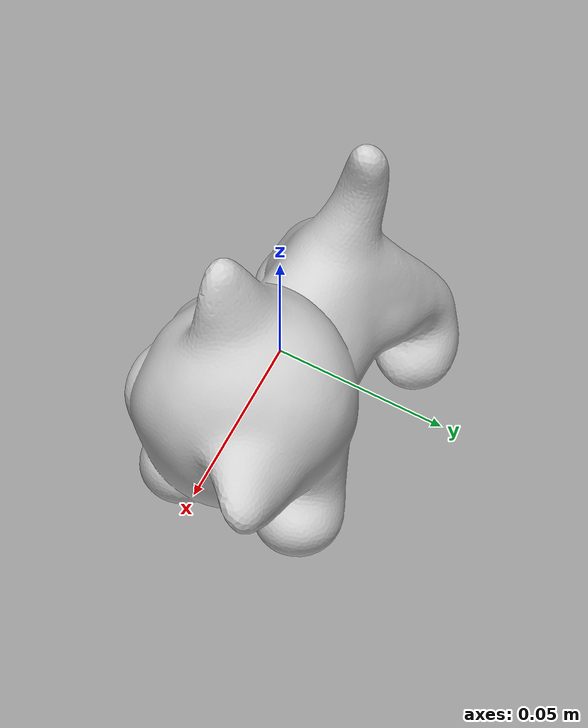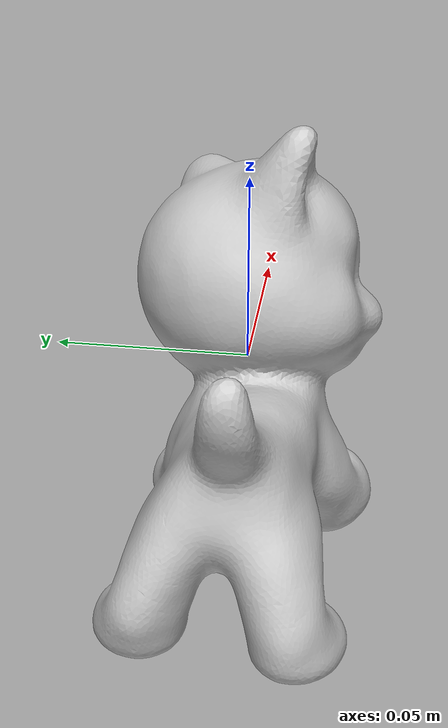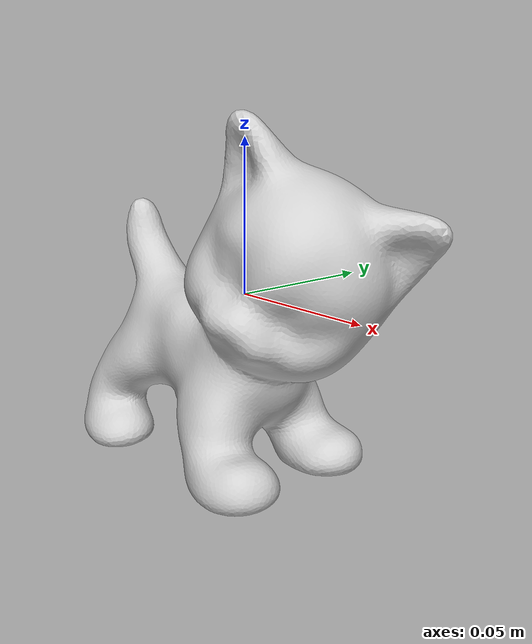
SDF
<?xml version="1.0" ?>
<sdf version="1.5">
  <model name="cat">
	<static>false</static>
    <pose>0 0 0 0 0 0</pose>
    <link name="link">
      <inertial>
        <mass>0.1</mass>
      </inertial>
      <collision name="collision">
        <geometry>
          <mesh>
            <uri>model://Cat/meshes/cat.dae</uri>
            <scale>1 1 1</scale>
          </mesh>
        </geometry>
      </collision>
      <visual name="visual">
        <geometry>
          <mesh>
            <uri>model://Cat/meshes/cat.dae</uri>
          </mesh>
        </geometry>
      </visual>
    </link>
  </model>
</sdf>
